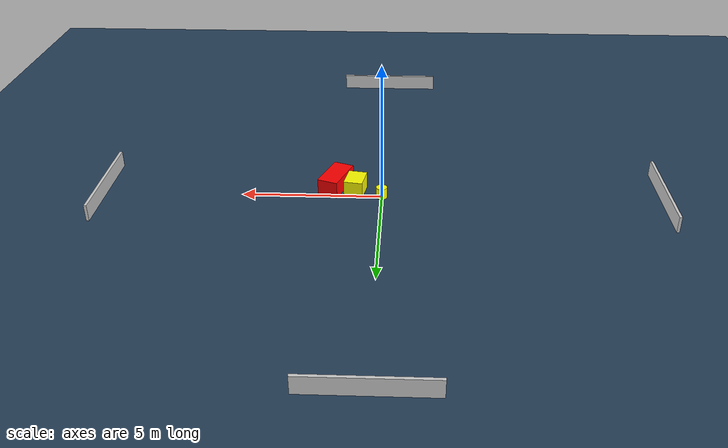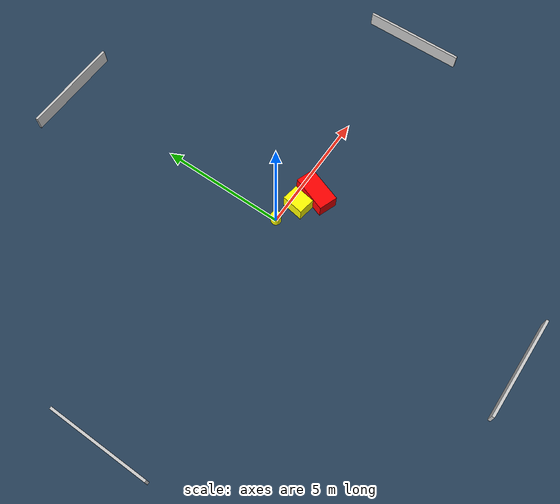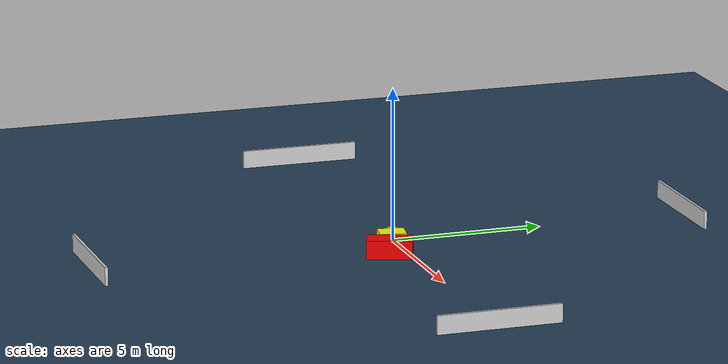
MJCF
<?xml version="1.0" ?>
<mujoco model="generated_environment">
  <option timestep="0.01" integrator="RK4" cone="elliptic"/>
  <default>
    <geom density="1"/>
  </default>
  <asset>
    <texture builtin="gradient" height="3072" name="skybox" rgb1="0.3 0.5 0.7" rgb2="0 0 0" type="skybox" width="512"/>
    <texture builtin="checker" height="300" name="groundplane" rgb1="0.2 0.3 0.4" rgb2="0.1 0.2 0.3" type="2d" width="300"/>
    <material name="groundplane" reflectance="0.2" texrepeat="5 5" texture="groundplane"/>
  </asset>
  <worldbody>
    <light dir="0 0 -1" directional="true" pos="0 0 1.5"/>
    <geom condim="3" friction="0.5 0.005 0.001" material="groundplane" name="floor" pos="0 0 0" size="0 0 0.05" type="plane"/>
    <body name="walls">
      <geom name="wall_1" condim="4" pos="-10.0 0.0 0.3" rgba="0.800000011920929 0.800000011920929 0.800000011920929 1.0" size="0.05 2.0 0.3" type="box"/>
      <geom name="wall_2" condim="4" pos="10.0 0.0 0.3" rgba="0.800000011920929 0.800000011920929 0.800000011920929 1.0" size="0.05 2.0 0.3" type="box"/>
      <geom name="wall_3" condim="4" pos="0.0 -10.0 0.3" rgba="0.800000011920929 0.800000011920929 0.800000011920929 1.0" size="2.0 0.05 0.3" type="box"/>
      <geom name="wall_4" condim="4" pos="0.0 10.0 0.3" rgba="0.800000011920929 0.800000011920929 0.800000011920929 1.0" size="2.0 0.05 0.3" type="box"/>
    </body>
    <body name="robot">
      <joint name="joint_x" type="slide" pos="0 0 0" axis="1 0 0"/>
      <joint name="joint_y" type="slide" pos="0 0 0" axis="0 1 0"/>
      <geom name="robot" type="cylinder" pos="0.0 0.0 0.2" size="0.2 0.2 0.0" mass="5.0" friction="1.0 0.005 0.0001" condim="4" rgba="1.0 1.0 0.0 1.0"/>
    </body>
    <body name="obstacle_1_movable">
      <geom name="obstacle_1_movable" condim="4" pos="0.9556321788972715 -0.3473973669549253 0.3" euler="0 0 350.5134057253693" friction="0.0 0.005 0.001" rgba="1.0 1.0 0.0 1.0" size="0.335035229895557 0.4326585838721452 0.3" type="box" mass="0.1"/>
      <joint type="free"/>
    </body>
    <body name="obstacle_2_static">
      <geom name="obstacle_2_static" condim="4" pos="1.6955907155595402 -0.6670150207829962 0.3" euler="0 0 159.89993096968928" friction="0.0 0.005 0.001" rgba="1.0 0.0 0.0 1.0" size="0.37493898503832185 0.7326989548436569 0.3" type="box"/>
    </body>
  </worldbody>
  <actuator>
    <motor name="actuator_x" joint="joint_x" gear="1" ctrlrange="-1 1"/>
    <motor name="actuator_y" joint="joint_y" gear="1" ctrlrange="-1 1"/>
  </actuator>
</mujoco>
